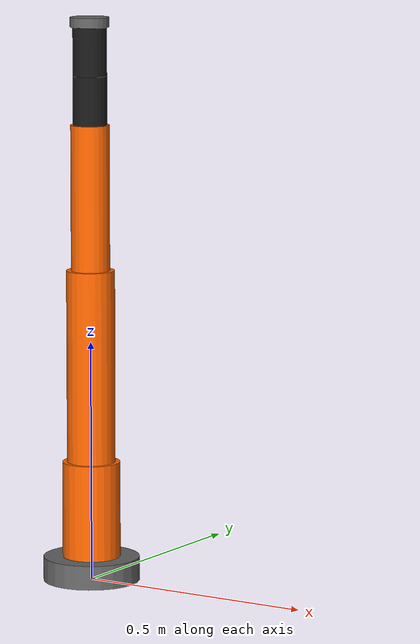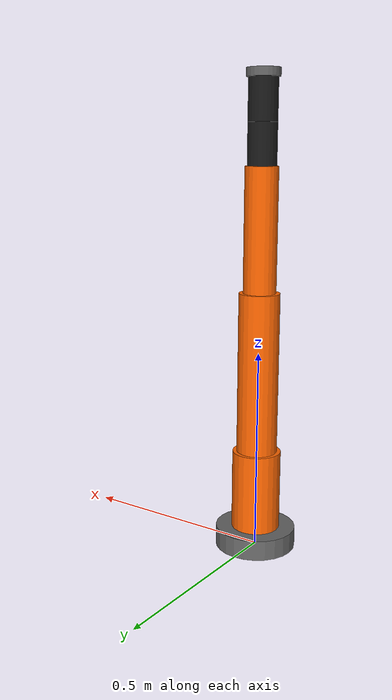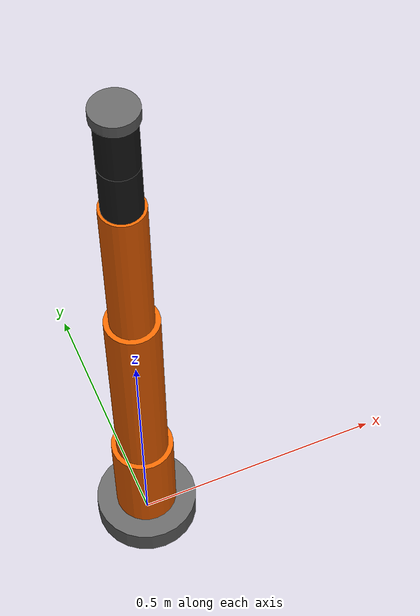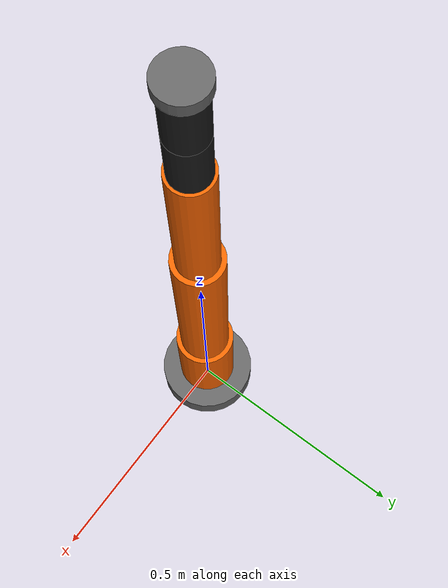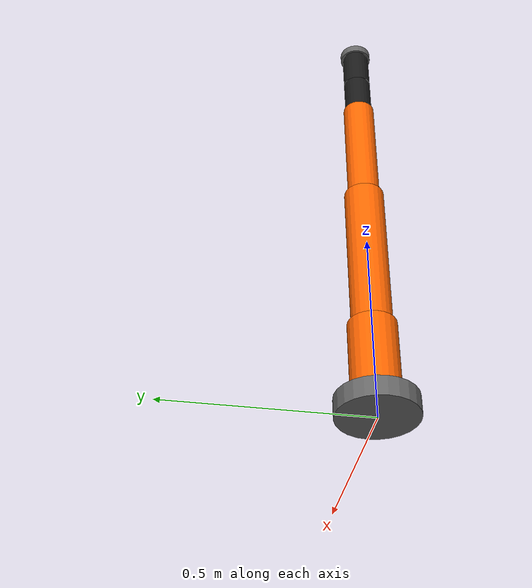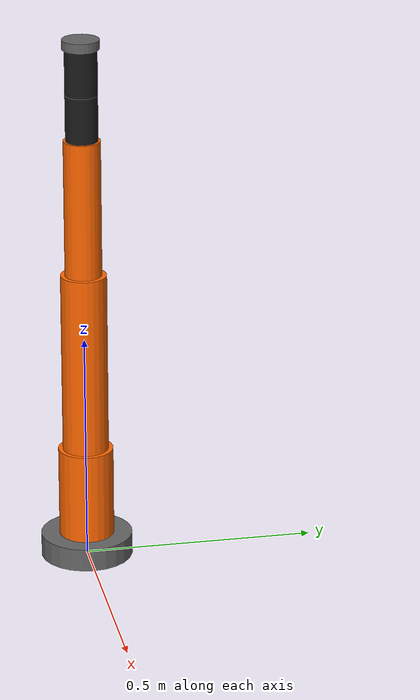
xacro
<?xml version="1.0"?>
<robot name="industrial_6dof" xmlns:xacro="http://www.ros.org/wiki/xacro">
    <!-- Include all component files -->
    <xacro:include filename="inertial_macros.xacro"/>
    <xacro:include filename="robot_core.xacro"/>
    <xacro:include filename="ros2_control.xacro"/>
</robot>

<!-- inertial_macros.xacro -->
<robot xmlns:xacro="http://www.ros.org/wiki/xacro">
    <!-- Standard Inertia Macros to prevent Gazebo physics explosions -->
    <xacro:macro name="inertial_sphere" params="mass radius *origin">
        <inertial>
            <xacro:insert_block name="origin"/>
            <mass value="${mass}" />
            <inertia ixx="${(2/5) * mass * (radius*radius)}" ixy="0.0" ixz="0.0"
                     iyy="${(2/5) * mass * (radius*radius)}" iyz="0.0"
                     izz="${(2/5) * mass * (radius*radius)}" />
        </inertial>
    </xacro:macro>

    <xacro:macro name="inertial_box" params="mass x y z *origin">
        <inertial>
            <xacro:insert_block name="origin"/>
            <mass value="${mass}" />
            <inertia ixx="${(1/12) * mass * (y*y+z*z)}" ixy="0.0" ixz="0.0"
                     iyy="${(1/12) * mass * (x*x+z*z)}" iyz="0.0"
                     izz="${(1/12) * mass * (x*x+y*y)}" />
        </inertial>
    </xacro:macro>

    <xacro:macro name="inertial_cylinder" params="mass length radius *origin">
        <inertial>
            <xacro:insert_block name="origin"/>
            <mass value="${mass}" />
            <inertia ixx="${(1/12) * mass * (3*radius*radius + length*length)}" ixy="0.0" ixz="0.0"
                     iyy="${(1/12) * mass * (3*radius*radius + length*length)}" iyz="0.0"
                     izz="${(1/2) * mass * (radius*radius)}" />
        </inertial>
    </xacro:macro>
</robot>

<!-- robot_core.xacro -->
<robot xmlns:xacro="http://www.ros.org/wiki/xacro">

    <material name="industrial_orange"><color rgba="1.0 0.4 0.0 1.0"/></material>
    <material name="industrial_grey"><color rgba="0.4 0.4 0.4 1.0"/></material>
    <material name="industrial_black"><color rgba="0.1 0.1 0.1 1.0"/></material>

    <!-- World and Base -->
    <link name="world"/>
    <joint name="world_to_base" type="fixed">
        <parent link="world"/>
        <child link="base_link"/>
        <origin xyz="0 0 0" rpy="0 0 0"/>
    </joint>

    <link name="base_link">
        <visual><origin xyz="0 0 0.025" rpy="0 0 0"/><geometry><cylinder radius="0.1" length="0.05"/></geometry><material name="industrial_grey"/></visual>
        <collision><origin xyz="0 0 0.025" rpy="0 0 0"/><geometry><cylinder radius="0.1" length="0.05"/></geometry></collision>
        <xacro:inertial_cylinder mass="5.0" length="0.05" radius="0.1"><origin xyz="0 0 0.025" rpy="0 0 0"/></xacro:inertial_cylinder>
    </link>

    <!-- JOINT 1 & LINK 1 (Shoulder) -->
    <joint name="joint_1" type="revolute">
        <parent link="base_link"/><child link="link_1"/>
        <origin xyz="0 0 0.05" rpy="0 0 0"/>
        <axis xyz="0 0 1"/>
        <limit lower="-3.14159" upper="3.14159" effort="150.0" velocity="1.5"/>
    </joint>
    <link name="link_1">
        <visual><origin xyz="0 0 0.1" rpy="0 0 0"/><geometry><cylinder radius="0.06" length="0.2"/></geometry><material name="industrial_orange"/></visual>
        <collision><origin xyz="0 0 0.1" rpy="0 0 0"/><geometry><cylinder radius="0.06" length="0.2"/></geometry></collision>
        <xacro:inertial_cylinder mass="4.0" length="0.2" radius="0.06"><origin xyz="0 0 0.1" rpy="0 0 0"/></xacro:inertial_cylinder>
    </link>

    <!-- JOINT 2 & LINK 2 (Upper Arm) -->
    <joint name="joint_2" type="revolute">
        <parent link="link_1"/><child link="link_2"/>
        <origin xyz="0 0 0.2" rpy="0 0 0"/>
        <axis xyz="0 1 0"/>
        <limit lower="-1.5708" upper="1.5708" effort="150.0" velocity="1.5"/>
    </joint>
    <link name="link_2">
        <visual><origin xyz="0 0 0.2" rpy="0 0 0"/><geometry><cylinder radius="0.05" length="0.4"/></geometry><material name="industrial_orange"/></visual>
        <collision><origin xyz="0 0 0.2" rpy="0 0 0"/><geometry><cylinder radius="0.05" length="0.4"/></geometry></collision>
        <xacro:inertial_cylinder mass="5.0" length="0.4" radius="0.05"><origin xyz="0 0 0.2" rpy="0 0 0"/></xacro:inertial_cylinder>
    </link>

    <!-- JOINT 3 & LINK 3 (Forearm) -->
    <joint name="joint_3" type="revolute">
        <parent link="link_2"/><child link="link_3"/>
        <origin xyz="0 0 0.4" rpy="0 0 0"/>
        <axis xyz="0 1 0"/>
        <limit lower="-2.356" upper="2.356" effort="100.0" velocity="2.0"/>
    </joint>
    <link name="link_3">
        <visual><origin xyz="0 0 0.15" rpy="0 0 0"/><geometry><cylinder radius="0.04" length="0.3"/></geometry><material name="industrial_orange"/></visual>
        <collision><origin xyz="0 0 0.15" rpy="0 0 0"/><geometry><cylinder radius="0.04" length="0.3"/></geometry></collision>
        <xacro:inertial_cylinder mass="3.0" length="0.3" radius="0.04"><origin xyz="0 0 0.15" rpy="0 0 0"/></xacro:inertial_cylinder>
    </link>

    <!-- JOINT 4 & LINK 4 (Wrist 1) -->
    <joint name="joint_4" type="revolute">
        <parent link="link_3"/><child link="link_4"/>
        <origin xyz="0 0 0.3" rpy="0 0 0"/>
        <axis xyz="0 0 1"/>
        <limit lower="-3.14159" upper="3.14159" effort="50.0" velocity="2.5"/>
    </joint>
    <link name="link_4">
        <visual><origin xyz="0 0 0.05" rpy="0 0 0"/><geometry><cylinder radius="0.035" length="0.1"/></geometry><material name="industrial_black"/></visual>
        <collision><origin xyz="0 0 0.05" rpy="0 0 0"/><geometry><cylinder radius="0.035" length="0.1"/></geometry></collision>
        <xacro:inertial_cylinder mass="1.0" length="0.1" radius="0.035"><origin xyz="0 0 0.05" rpy="0 0 0"/></xacro:inertial_cylinder>
    </link>

    <!-- JOINT 5 & LINK 5 (Wrist 2) -->
    <joint name="joint_5" type="revolute">
        <parent link="link_4"/><child link="link_5"/>
        <origin xyz="0 0 0.1" rpy="0 0 0"/>
        <axis xyz="0 1 0"/>
        <limit lower="-1.5708" upper="1.5708" effort="50.0" velocity="2.5"/>
    </joint>
    <link name="link_5">
        <visual><origin xyz="0 0 0.05" rpy="0 0 0"/><geometry><cylinder radius="0.035" length="0.1"/></geometry><material name="industrial_black"/></visual>
        <collision><origin xyz="0 0 0.05" rpy="0 0 0"/><geometry><cylinder radius="0.035" length="0.1"/></geometry></collision>
        <xacro:inertial_cylinder mass="1.0" length="0.1" radius="0.035"><origin xyz="0 0 0.05" rpy="0 0 0"/></xacro:inertial_cylinder>
    </link>

    <!-- JOINT 6 & LINK 6 (Tool Flange) -->
    <joint name="joint_6" type="revolute">
        <parent link="link_5"/><child link="link_6"/>
        <origin xyz="0 0 0.1" rpy="0 0 0"/>
        <axis xyz="0 0 1"/>
        <limit lower="-3.14159" upper="3.14159" effort="25.0" velocity="3.0"/>
    </joint>
    <link name="link_6">
        <visual><origin xyz="0 0 0.01" rpy="0 0 0"/><geometry><cylinder radius="0.04" length="0.02"/></geometry><material name="industrial_grey"/></visual>
        <collision><origin xyz="0 0 0.01" rpy="0 0 0"/><geometry><cylinder radius="0.04" length="0.02"/></geometry></collision>
        <xacro:inertial_cylinder mass="0.5" length="0.02" radius="0.04"><origin xyz="0 0 0.01" rpy="0 0 0"/></xacro:inertial_cylinder>
    </link>

    <!-- TOOL FRAME (TCP) -->
    <joint name="joint_tool0" type="fixed">
        <parent link="link_6"/>
        <child link="tool0"/>
        <origin xyz="0 0 0.02" rpy="0 0 0"/>
    </joint>
    <link name="tool0"/>

</robot>
